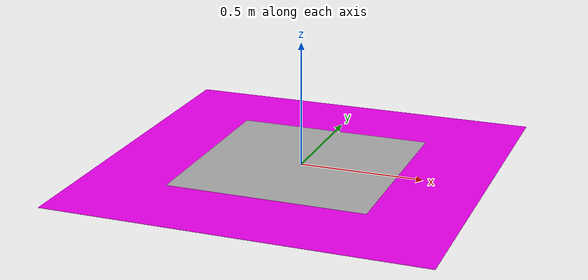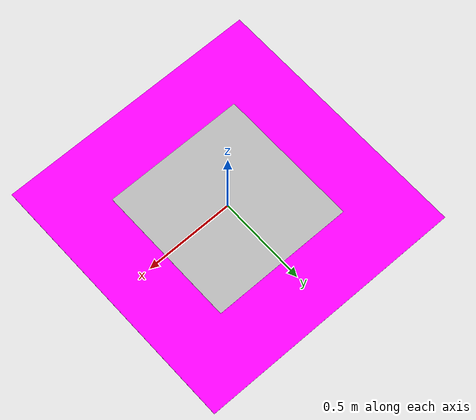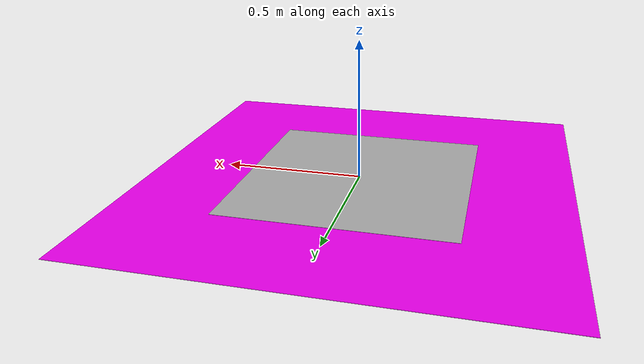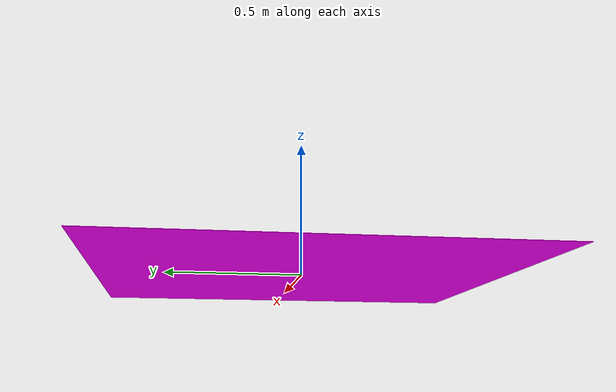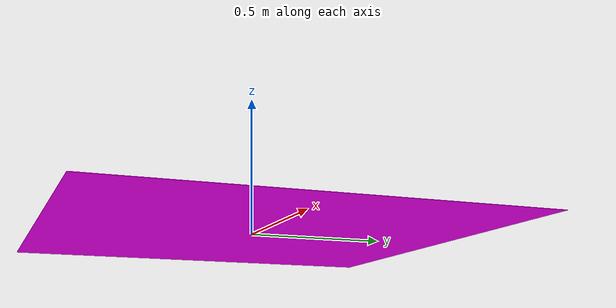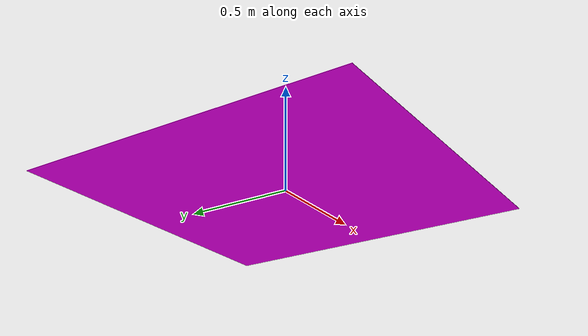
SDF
<?xml version="1.0" ?>
<sdf version="1.9">
  <model name="triangulo_4">
    <static>true</static>
    <link name="link">
      <collision name="collision">
        <geometry><plane><normal>0 0 1</normal><size>1.5 1.5</size></plane></geometry>
      </collision>
      <visual name="visual">
        <geometry><plane><normal>0 0 1</normal><size>1.5 1.5</size></plane></geometry>
        <material>
          <ambient>1 0 1 1</ambient>
          <diffuse>1 0 1 1</diffuse>
        </material>
      </visual>
      <visual name="text_visual">
        <pose>0 0 0.005 0 0 0</pose>
        <geometry><plane><normal>0 0 1</normal><size>0.8 0.8</size></plane></geometry>
        <plugin filename="gz-sim-label-system" name="gz::sim::systems::Label">
          <text>4</text>
          <font_size>64</font_size>
          <color>0 0 0 1</color>
        </plugin>
      </visual>
    </link>
  </model>
</sdf>
